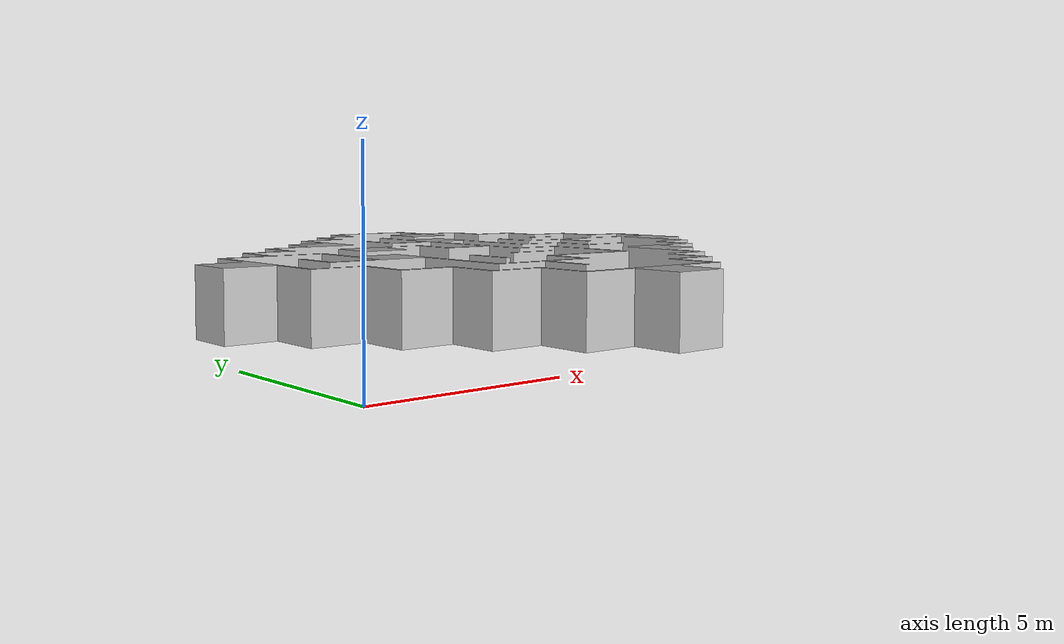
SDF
<?xml version="1.0" ?>
<sdf version="1.6">
  <model name="robocup">
    <static>true</static>
    <link name="link">
      <collision name="collision">
        <geometry>
          <mesh>
            <uri>model://robocup/meshes/robocup.dae</uri>
          </mesh>
        </geometry>
      </collision>
      <visual name="visual">
        <geometry>
          <mesh>
            <uri>model://robocup/meshes/robocup.dae</uri>
          </mesh>
        </geometry>
      </visual>
    </link>
  </model>
</sdf>
